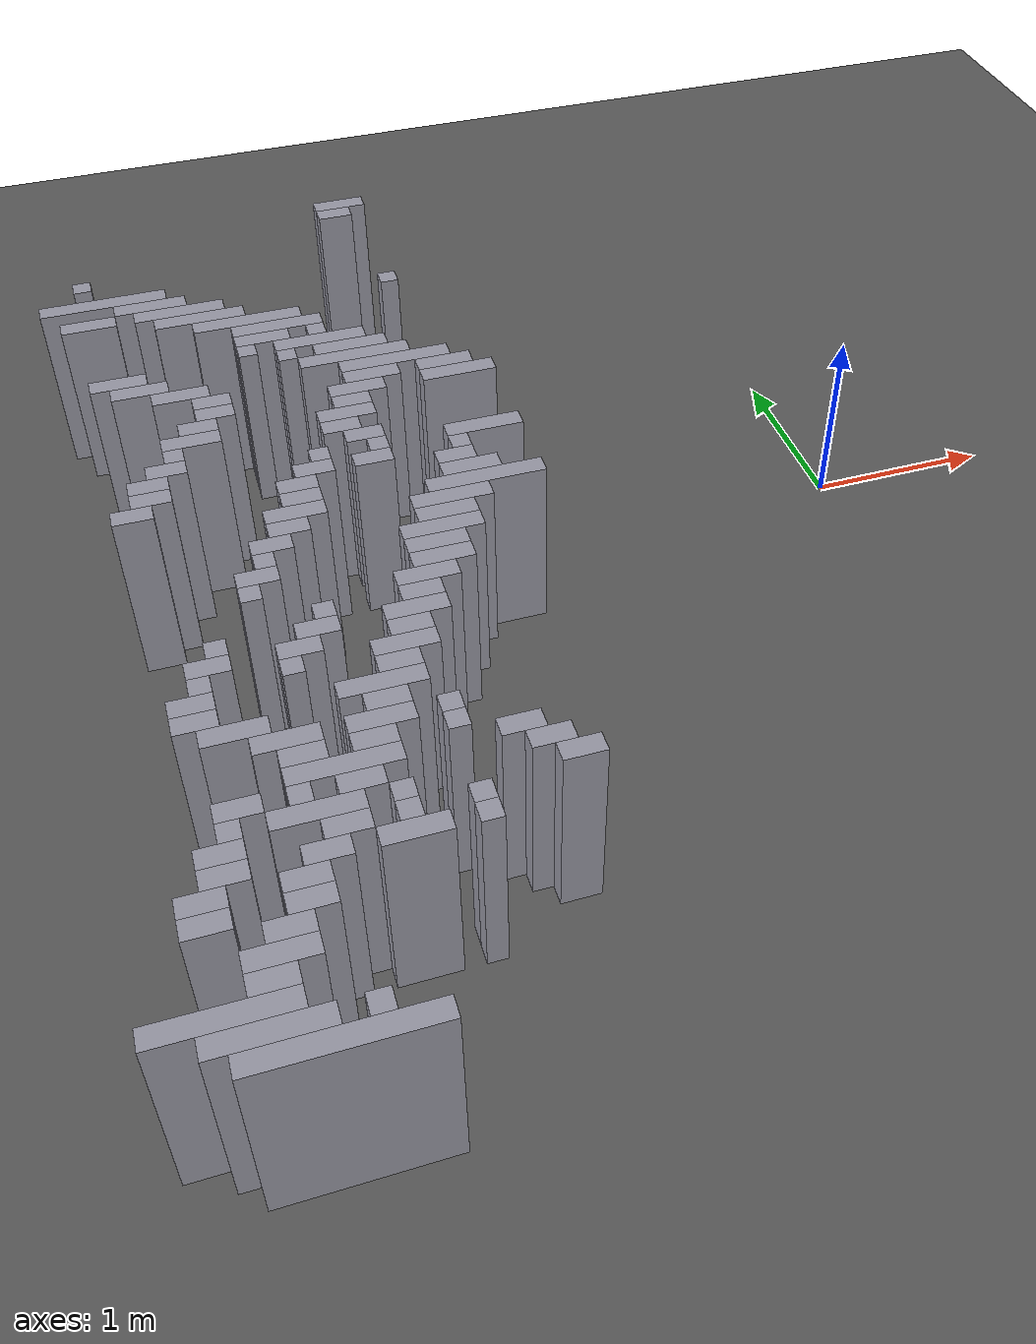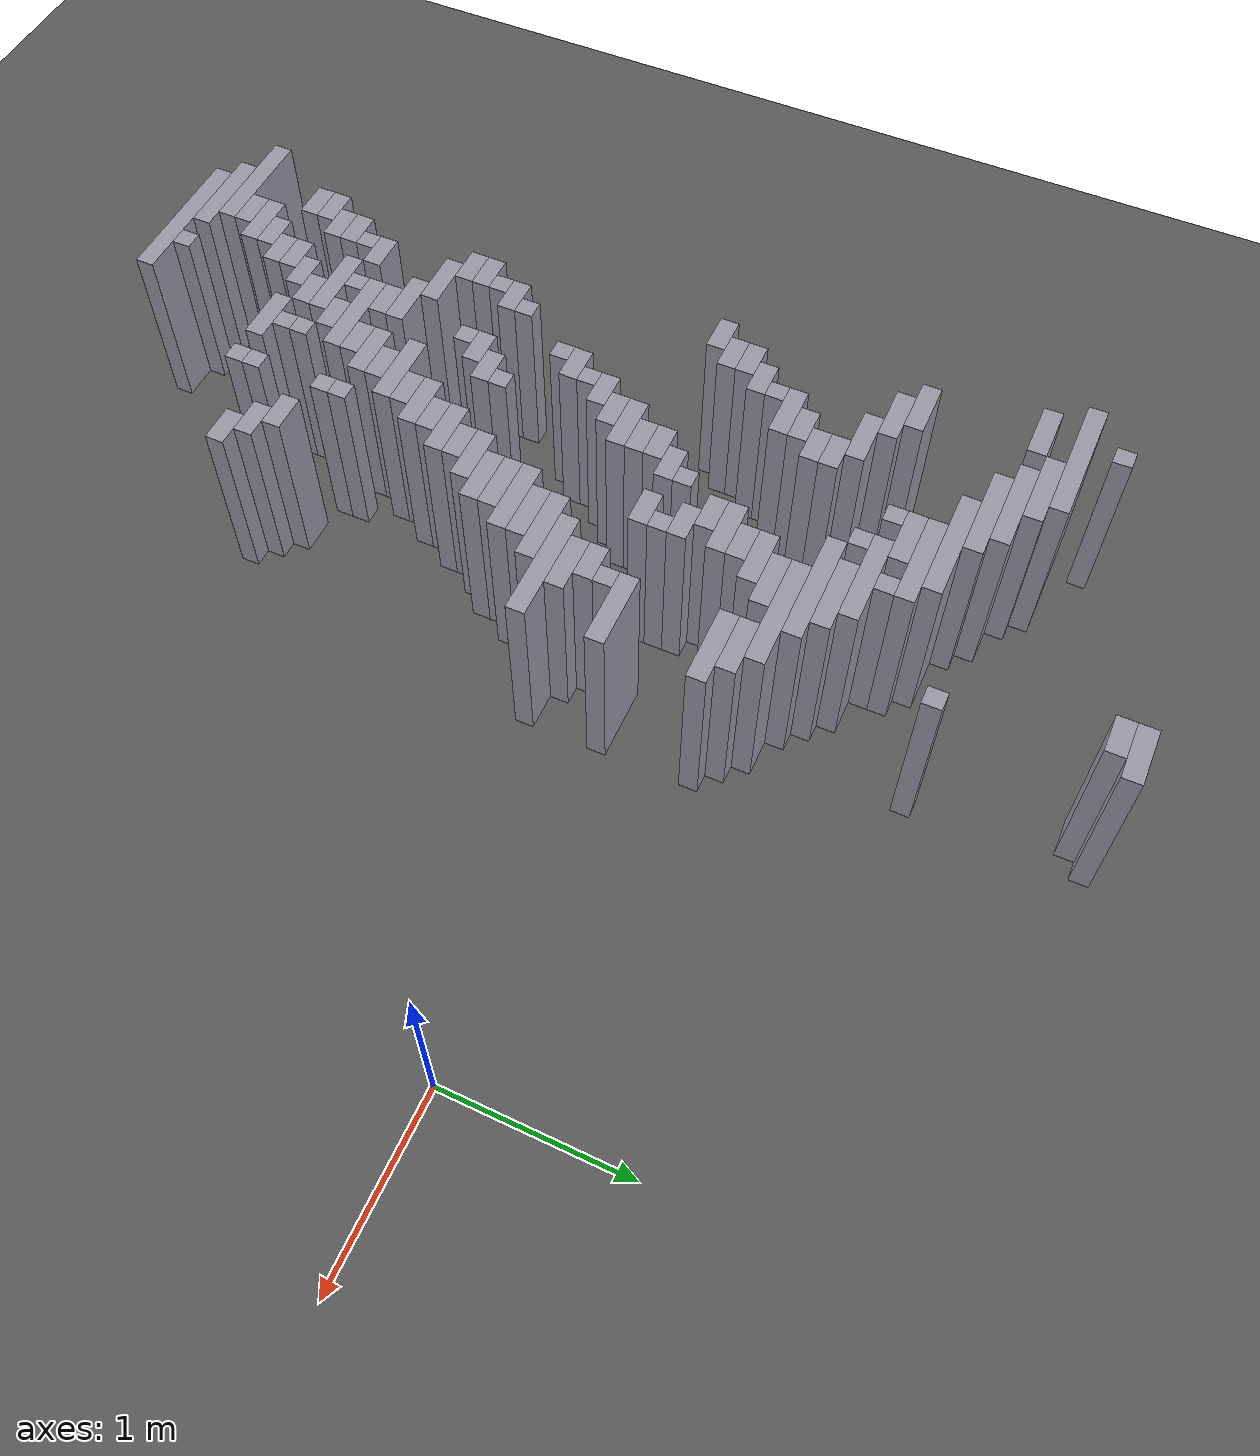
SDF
<sdf version="1.8">
 <world name="dimi">
  <model name="ground">
   <static>true</static>
   <link name="ground_link">
    <collision name="c"><geometry><plane><normal>0 0 1</normal><size>60 60</size></plane></geometry></collision>
    <visual name="v">
     <geometry><plane><normal>0 0 1</normal><size>60 60</size></plane></geometry>
     <material><ambient>0.3 0.3 0.3 1</ambient><diffuse>0.35 0.35 0.35 1</diffuse></material>
    </visual>
   </link>
  </model>
  <model name="walls">
   <static>true</static>
   <link name="wall_0">
    <pose>-2.3110 2.3290 0.5000 0 0 0</pose>
    <collision name="c"><geometry><box><size>0.3000 0.1000 1.0000</size></box></geometry></collision>
    <visual name="v">
     <geometry><box><size>0.3000 0.1000 1.0000</size></box></geometry>
     <material><ambient>0.5 0.5 0.55 1</ambient><diffuse>0.6 0.6 0.65 1</diffuse></material>
    </visual>
   </link>
   <link name="wall_2">
    <pose>-2.3610 2.2290 0.5000 0 0 0</pose>
    <collision name="c"><geometry><box><size>0.2000 0.1000 1.0000</size></box></geometry></collision>
    <visual name="v">
     <geometry><box><size>0.2000 0.1000 1.0000</size></box></geometry>
     <material><ambient>0.5 0.5 0.55 1</ambient><diffuse>0.6 0.6 0.65 1</diffuse></material>
    </visual>
   </link>
   <link name="wall_9">
    <pose>-3.9110 1.8290 0.5000 0 0 0</pose>
    <collision name="c"><geometry><box><size>0.1000 0.1000 1.0000</size></box></geometry></collision>
    <visual name="v">
     <geometry><box><size>0.1000 0.1000 1.0000</size></box></geometry>
     <material><ambient>0.5 0.5 0.55 1</ambient><diffuse>0.6 0.6 0.65 1</diffuse></material>
    </visual>
   </link>
   <link name="wall_16">
    <pose>-3.8110 1.6290 0.5000 0 0 0</pose>
    <collision name="c"><geometry><box><size>0.7000 0.1000 1.0000</size></box></geometry></collision>
    <visual name="v">
     <geometry><box><size>0.7000 0.1000 1.0000</size></box></geometry>
     <material><ambient>0.5 0.5 0.55 1</ambient><diffuse>0.6 0.6 0.65 1</diffuse></material>
    </visual>
   </link>
   <link name="wall_20">
    <pose>-3.5610 1.5290 0.5000 0 0 0</pose>
    <collision name="c"><geometry><box><size>0.4000 0.1000 1.0000</size></box></geometry></collision>
    <visual name="v">
     <geometry><box><size>0.4000 0.1000 1.0000</size></box></geometry>
     <material><ambient>0.5 0.5 0.55 1</ambient><diffuse>0.6 0.6 0.65 1</diffuse></material>
    </visual>
   </link>
   <link name="wall_24">
    <pose>-3.9110 1.4290 0.5000 0 0 0</pose>
    <collision name="c"><geometry><box><size>0.3000 0.1000 1.0000</size></box></geometry></collision>
    <visual name="v">
     <geometry><box><size>0.3000 0.1000 1.0000</size></box></geometry>
     <material><ambient>0.5 0.5 0.55 1</ambient><diffuse>0.6 0.6 0.65 1</diffuse></material>
    </visual>
   </link>
   <link name="wall_25">
    <pose>-3.4110 1.4290 0.5000 0 0 0</pose>
    <collision name="c"><geometry><box><size>0.5000 0.1000 1.0000</size></box></geometry></collision>
    <visual name="v">
     <geometry><box><size>0.5000 0.1000 1.0000</size></box></geometry>
     <material><ambient>0.5 0.5 0.55 1</ambient><diffuse>0.6 0.6 0.65 1</diffuse></material>
    </visual>
   </link>
   <link name="wall_26">
    <pose>-2.2110 1.4290 0.5000 0 0 0</pose>
    <collision name="c"><geometry><box><size>0.1000 0.1000 1.0000</size></box></geometry></collision>
    <visual name="v">
     <geometry><box><size>0.1000 0.1000 1.0000</size></box></geometry>
     <material><ambient>0.5 0.5 0.55 1</ambient><diffuse>0.6 0.6 0.65 1</diffuse></material>
    </visual>
   </link>
   <link name="wall_31">
    <pose>-3.3110 1.3290 0.5000 0 0 0</pose>
    <collision name="c"><geometry><box><size>0.5000 0.1000 1.0000</size></box></geometry></collision>
    <visual name="v">
     <geometry><box><size>0.5000 0.1000 1.0000</size></box></geometry>
     <material><ambient>0.5 0.5 0.55 1</ambient><diffuse>0.6 0.6 0.65 1</diffuse></material>
    </visual>
   </link>
   <link name="wall_36">
    <pose>-3.0610 1.2290 0.5000 0 0 0</pose>
    <collision name="c"><geometry><box><size>0.6000 0.1000 1.0000</size></box></geometry></collision>
    <visual name="v">
     <geometry><box><size>0.6000 0.1000 1.0000</size></box></geometry>
     <material><ambient>0.5 0.5 0.55 1</ambient><diffuse>0.6 0.6 0.65 1</diffuse></material>
    </visual>
   </link>
   <link name="wall_41">
    <pose>-2.9110 1.1290 0.5000 0 0 0</pose>
    <collision name="c"><geometry><box><size>0.5000 0.1000 1.0000</size></box></geometry></collision>
    <visual name="v">
     <geometry><box><size>0.5000 0.1000 1.0000</size></box></geometry>
     <material><ambient>0.5 0.5 0.55 1</ambient><diffuse>0.6 0.6 0.65 1</diffuse></material>
    </visual>
   </link>
   <link name="wall_45">
    <pose>-3.0110 1.0290 0.5000 0 0 0</pose>
    <collision name="c"><geometry><box><size>0.3000 0.1000 1.0000</size></box></geometry></collision>
    <visual name="v">
     <geometry><box><size>0.3000 0.1000 1.0000</size></box></geometry>
     <material><ambient>0.5 0.5 0.55 1</ambient><diffuse>0.6 0.6 0.65 1</diffuse></material>
    </visual>
   </link>
   <link name="wall_46">
    <pose>-2.7110 1.0290 0.5000 0 0 0</pose>
    <collision name="c"><geometry><box><size>0.1000 0.1000 1.0000</size></box></geometry></collision>
    <visual name="v">
     <geometry><box><size>0.1000 0.1000 1.0000</size></box></geometry>
     <material><ambient>0.5 0.5 0.55 1</ambient><diffuse>0.6 0.6 0.65 1</diffuse></material>
    </visual>
   </link>
   <link name="wall_50">
    <pose>-3.1110 0.9290 0.5000 0 0 0</pose>
    <collision name="c"><geometry><box><size>0.1000 0.1000 1.0000</size></box></geometry></collision>
    <visual name="v">
     <geometry><box><size>0.1000 0.1000 1.0000</size></box></geometry>
     <material><ambient>0.5 0.5 0.55 1</ambient><diffuse>0.6 0.6 0.65 1</diffuse></material>
    </visual>
   </link>
   <link name="wall_51">
    <pose>-2.7110 0.9290 0.5000 0 0 0</pose>
    <collision name="c"><geometry><box><size>0.5000 0.1000 1.0000</size></box></geometry></collision>
    <visual name="v">
     <geometry><box><size>0.5000 0.1000 1.0000</size></box></geometry>
     <material><ambient>0.5 0.5 0.55 1</ambient><diffuse>0.6 0.6 0.65 1</diffuse></material>
    </visual>
   </link>
   <link name="wall_54">
    <pose>-3.8110 0.8290 0.5000 0 0 0</pose>
    <collision name="c"><geometry><box><size>0.3000 0.1000 1.0000</size></box></geometry></collision>
    <visual name="v">
     <geometry><box><size>0.3000 0.1000 1.0000</size></box></geometry>
     <material><ambient>0.5 0.5 0.55 1</ambient><diffuse>0.6 0.6 0.65 1</diffuse></material>
    </visual>
   </link>
   <link name="wall_55">
    <pose>-2.9110 0.8290 0.5000 0 0 0</pose>
    <collision name="c"><geometry><box><size>0.1000 0.1000 1.0000</size></box></geometry></collision>
    <visual name="v">
     <geometry><box><size>0.1000 0.1000 1.0000</size></box></geometry>
     <material><ambient>0.5 0.5 0.55 1</ambient><diffuse>0.6 0.6 0.65 1</diffuse></material>
    </visual>
   </link>
   <link name="wall_56">
    <pose>-2.5610 0.8290 0.5000 0 0 0</pose>
    <collision name="c"><geometry><box><size>0.4000 0.1000 1.0000</size></box></geometry></collision>
    <visual name="v">
     <geometry><box><size>0.4000 0.1000 1.0000</size></box></geometry>
     <material><ambient>0.5 0.5 0.55 1</ambient><diffuse>0.6 0.6 0.65 1</diffuse></material>
    </visual>
   </link>
   <link name="wall_60">
    <pose>-3.7110 0.7290 0.5000 0 0 0</pose>
    <collision name="c"><geometry><box><size>0.3000 0.1000 1.0000</size></box></geometry></collision>
    <visual name="v">
     <geometry><box><size>0.3000 0.1000 1.0000</size></box></geometry>
     <material><ambient>0.5 0.5 0.55 1</ambient><diffuse>0.6 0.6 0.65 1</diffuse></material>
    </visual>
   </link>
   <link name="wall_61">
    <pose>-2.5610 0.7290 0.5000 0 0 0</pose>
    <collision name="c"><geometry><box><size>0.6000 0.1000 1.0000</size></box></geometry></collision>
    <visual name="v">
     <geometry><box><size>0.6000 0.1000 1.0000</size></box></geometry>
     <material><ambient>0.5 0.5 0.55 1</ambient><diffuse>0.6 0.6 0.65 1</diffuse></material>
    </visual>
   </link>
   <link name="wall_64">
    <pose>-3.5110 0.6290 0.5000 0 0 0</pose>
    <collision name="c"><geometry><box><size>0.3000 0.1000 1.0000</size></box></geometry></collision>
    <visual name="v">
     <geometry><box><size>0.3000 0.1000 1.0000</size></box></geometry>
     <material><ambient>0.5 0.5 0.55 1</ambient><diffuse>0.6 0.6 0.65 1</diffuse></material>
    </visual>
   </link>
   <link name="wall_65">
    <pose>-2.3610 0.6290 0.5000 0 0 0</pose>
    <collision name="c"><geometry><box><size>0.6000 0.1000 1.0000</size></box></geometry></collision>
    <visual name="v">
     <geometry><box><size>0.6000 0.1000 1.0000</size></box></geometry>
     <material><ambient>0.5 0.5 0.55 1</ambient><diffuse>0.6 0.6 0.65 1</diffuse></material>
    </visual>
   </link>
   <link name="wall_68">
    <pose>-3.3610 0.5290 0.5000 0 0 0</pose>
    <collision name="c"><geometry><box><size>0.2000 0.1000 1.0000</size></box></geometry></collision>
    <visual name="v">
     <geometry><box><size>0.2000 0.1000 1.0000</size></box></geometry>
     <material><ambient>0.5 0.5 0.55 1</ambient><diffuse>0.6 0.6 0.65 1</diffuse></material>
    </visual>
   </link>
   <link name="wall_69">
    <pose>-2.5110 0.5290 0.5000 0 0 0</pose>
    <collision name="c"><geometry><box><size>0.3000 0.1000 1.0000</size></box></geometry></collision>
    <visual name="v">
     <geometry><box><size>0.3000 0.1000 1.0000</size></box></geometry>
     <material><ambient>0.5 0.5 0.55 1</ambient><diffuse>0.6 0.6 0.65 1</diffuse></material>
    </visual>
   </link>
   <link name="wall_70">
    <pose>-2.1110 0.5290 0.5000 0 0 0</pose>
    <collision name="c"><geometry><box><size>0.3000 0.1000 1.0000</size></box></geometry></collision>
    <visual name="v">
     <geometry><box><size>0.3000 0.1000 1.0000</size></box></geometry>
     <material><ambient>0.5 0.5 0.55 1</ambient><diffuse>0.6 0.6 0.65 1</diffuse></material>
    </visual>
   </link>
   <link name="wall_73">
    <pose>-3.3610 0.4290 0.5000 0 0 0</pose>
    <collision name="c"><geometry><box><size>0.2000 0.1000 1.0000</size></box></geometry></collision>
    <visual name="v">
     <geometry><box><size>0.2000 0.1000 1.0000</size></box></geometry>
     <material><ambient>0.5 0.5 0.55 1</ambient><diffuse>0.6 0.6 0.65 1</diffuse></material>
    </visual>
   </link>
   <link name="wall_74">
    <pose>-2.6110 0.4290 0.5000 0 0 0</pose>
    <collision name="c"><geometry><box><size>0.3000 0.1000 1.0000</size></box></geometry></collision>
    <visual name="v">
     <geometry><box><size>0.3000 0.1000 1.0000</size></box></geometry>
     <material><ambient>0.5 0.5 0.55 1</ambient><diffuse>0.6 0.6 0.65 1</diffuse></material>
    </visual>
   </link>
   <link name="wall_75">
    <pose>-2.0610 0.4290 0.5000 0 0 0</pose>
    <collision name="c"><geometry><box><size>0.4000 0.1000 1.0000</size></box></geometry></collision>
    <visual name="v">
     <geometry><box><size>0.4000 0.1000 1.0000</size></box></geometry>
     <material><ambient>0.5 0.5 0.55 1</ambient><diffuse>0.6 0.6 0.65 1</diffuse></material>
    </visual>
   </link>
   <link name="wall_79">
    <pose>-3.4610 0.3290 0.5000 0 0 0</pose>
    <collision name="c"><geometry><box><size>0.2000 0.1000 1.0000</size></box></geometry></collision>
    <visual name="v">
     <geometry><box><size>0.2000 0.1000 1.0000</size></box></geometry>
     <material><ambient>0.5 0.5 0.55 1</ambient><diffuse>0.6 0.6 0.65 1</diffuse></material>
    </visual>
   </link>
   <link name="wall_80">
    <pose>-2.6610 0.3290 0.5000 0 0 0</pose>
    <collision name="c"><geometry><box><size>0.2000 0.1000 1.0000</size></box></geometry></collision>
    <visual name="v">
     <geometry><box><size>0.2000 0.1000 1.0000</size></box></geometry>
     <material><ambient>0.5 0.5 0.55 1</ambient><diffuse>0.6 0.6 0.65 1</diffuse></material>
    </visual>
   </link>
   <link name="wall_83">
    <pose>-3.5110 0.2290 0.5000 0 0 0</pose>
    <collision name="c"><geometry><box><size>0.3000 0.1000 1.0000</size></box></geometry></collision>
    <visual name="v">
     <geometry><box><size>0.3000 0.1000 1.0000</size></box></geometry>
     <material><ambient>0.5 0.5 0.55 1</ambient><diffuse>0.6 0.6 0.65 1</diffuse></material>
    </visual>
   </link>
   <link name="wall_84">
    <pose>-2.7110 0.2290 0.5000 0 0 0</pose>
    <collision name="c"><geometry><box><size>0.3000 0.1000 1.0000</size></box></geometry></collision>
    <visual name="v">
     <geometry><box><size>0.3000 0.1000 1.0000</size></box></geometry>
     <material><ambient>0.5 0.5 0.55 1</ambient><diffuse>0.6 0.6 0.65 1</diffuse></material>
    </visual>
   </link>
   <link name="wall_88">
    <pose>-3.6110 0.1290 0.5000 0 0 0</pose>
    <collision name="c"><geometry><box><size>0.1000 0.1000 1.0000</size></box></geometry></collision>
    <visual name="v">
     <geometry><box><size>0.1000 0.1000 1.0000</size></box></geometry>
     <material><ambient>0.5 0.5 0.55 1</ambient><diffuse>0.6 0.6 0.65 1</diffuse></material>
    </visual>
   </link>
   <link name="wall_89">
    <pose>-2.7610 0.1290 0.5000 0 0 0</pose>
    <collision name="c"><geometry><box><size>0.2000 0.1000 1.0000</size></box></geometry></collision>
    <visual name="v">
     <geometry><box><size>0.2000 0.1000 1.0000</size></box></geometry>
     <material><ambient>0.5 0.5 0.55 1</ambient><diffuse>0.6 0.6 0.65 1</diffuse></material>
    </visual>
   </link>
   <link name="wall_95">
    <pose>-3.6610 0.0290 0.5000 0 0 0</pose>
    <collision name="c"><geometry><box><size>0.2000 0.1000 1.0000</size></box></geometry></collision>
    <visual name="v">
     <geometry><box><size>0.2000 0.1000 1.0000</size></box></geometry>
     <material><ambient>0.5 0.5 0.55 1</ambient><diffuse>0.6 0.6 0.65 1</diffuse></material>
    </visual>
   </link>
   <link name="wall_96">
    <pose>-2.6610 0.0290 0.5000 0 0 0</pose>
    <collision name="c"><geometry><box><size>0.2000 0.1000 1.0000</size></box></geometry></collision>
    <visual name="v">
     <geometry><box><size>0.2000 0.1000 1.0000</size></box></geometry>
     <material><ambient>0.5 0.5 0.55 1</ambient><diffuse>0.6 0.6 0.65 1</diffuse></material>
    </visual>
   </link>
   <link name="wall_101">
    <pose>-3.7610 -0.0710 0.5000 0 0 0</pose>
    <collision name="c"><geometry><box><size>0.2000 0.1000 1.0000</size></box></geometry></collision>
    <visual name="v">
     <geometry><box><size>0.2000 0.1000 1.0000</size></box></geometry>
     <material><ambient>0.5 0.5 0.55 1</ambient><diffuse>0.6 0.6 0.65 1</diffuse></material>
    </visual>
   </link>
   <link name="wall_102">
    <pose>-2.9110 -0.0710 0.5000 0 0 0</pose>
    <collision name="c"><geometry><box><size>0.1000 0.1000 1.0000</size></box></geometry></collision>
    <visual name="v">
     <geometry><box><size>0.1000 0.1000 1.0000</size></box></geometry>
     <material><ambient>0.5 0.5 0.55 1</ambient><diffuse>0.6 0.6 0.65 1</diffuse></material>
    </visual>
   </link>
   <link name="wall_103">
    <pose>-2.6110 -0.0710 0.5000 0 0 0</pose>
    <collision name="c"><geometry><box><size>0.1000 0.1000 1.0000</size></box></geometry></collision>
    <visual name="v">
     <geometry><box><size>0.1000 0.1000 1.0000</size></box></geometry>
     <material><ambient>0.5 0.5 0.55 1</ambient><diffuse>0.6 0.6 0.65 1</diffuse></material>
    </visual>
   </link>
   <link name="wall_104">
    <pose>-2.0610 -0.0710 0.5000 0 0 0</pose>
    <collision name="c"><geometry><box><size>0.4000 0.1000 1.0000</size></box></geometry></collision>
    <visual name="v">
     <geometry><box><size>0.4000 0.1000 1.0000</size></box></geometry>
     <material><ambient>0.5 0.5 0.55 1</ambient><diffuse>0.6 0.6 0.65 1</diffuse></material>
    </visual>
   </link>
   <link name="wall_110">
    <pose>-3.7610 -0.1710 0.5000 0 0 0</pose>
    <collision name="c"><geometry><box><size>0.2000 0.1000 1.0000</size></box></geometry></collision>
    <visual name="v">
     <geometry><box><size>0.2000 0.1000 1.0000</size></box></geometry>
     <material><ambient>0.5 0.5 0.55 1</ambient><diffuse>0.6 0.6 0.65 1</diffuse></material>
    </visual>
   </link>
   <link name="wall_111">
    <pose>-2.9610 -0.1710 0.5000 0 0 0</pose>
    <collision name="c"><geometry><box><size>0.2000 0.1000 1.0000</size></box></geometry></collision>
    <visual name="v">
     <geometry><box><size>0.2000 0.1000 1.0000</size></box></geometry>
     <material><ambient>0.5 0.5 0.55 1</ambient><diffuse>0.6 0.6 0.65 1</diffuse></material>
    </visual>
   </link>
   <link name="wall_112">
    <pose>-2.6610 -0.1710 0.5000 0 0 0</pose>
    <collision name="c"><geometry><box><size>0.2000 0.1000 1.0000</size></box></geometry></collision>
    <visual name="v">
     <geometry><box><size>0.2000 0.1000 1.0000</size></box></geometry>
     <material><ambient>0.5 0.5 0.55 1</ambient><diffuse>0.6 0.6 0.65 1</diffuse></material>
    </visual>
   </link>
   <link name="wall_113">
    <pose>-2.2110 -0.1710 0.5000 0 0 0</pose>
    <collision name="c"><geometry><box><size>0.1000 0.1000 1.0000</size></box></geometry></collision>
    <visual name="v">
     <geometry><box><size>0.1000 0.1000 1.0000</size></box></geometry>
     <material><ambient>0.5 0.5 0.55 1</ambient><diffuse>0.6 0.6 0.65 1</diffuse></material>
    </visual>
   </link>
   <link name="wall_121">
    <pose>-3.8610 -0.2710 0.5000 0 0 0</pose>
    <collision name="c"><geometry><box><size>0.2000 0.1000 1.0000</size></box></geometry></collision>
    <visual name="v">
     <geometry><box><size>0.2000 0.1000 1.0000</size></box></geometry>
     <material><ambient>0.5 0.5 0.55 1</ambient><diffuse>0.6 0.6 0.65 1</diffuse></material>
    </visual>
   </link>
   <link name="wall_122">
    <pose>-3.0610 -0.2710 0.5000 0 0 0</pose>
    <collision name="c"><geometry><box><size>0.2000 0.1000 1.0000</size></box></geometry></collision>
    <visual name="v">
     <geometry><box><size>0.2000 0.1000 1.0000</size></box></geometry>
     <material><ambient>0.5 0.5 0.55 1</ambient><diffuse>0.6 0.6 0.65 1</diffuse></material>
    </visual>
   </link>
   <link name="wall_123">
    <pose>-2.2610 -0.2710 0.5000 0 0 0</pose>
    <collision name="c"><geometry><box><size>0.2000 0.1000 1.0000</size></box></geometry></collision>
    <visual name="v">
     <geometry><box><size>0.2000 0.1000 1.0000</size></box></geometry>
     <material><ambient>0.5 0.5 0.55 1</ambient><diffuse>0.6 0.6 0.65 1</diffuse></material>
    </visual>
   </link>
   <link name="wall_132">
    <pose>-3.0610 -0.3710 0.5000 0 0 0</pose>
    <collision name="c"><geometry><box><size>0.2000 0.1000 1.0000</size></box></geometry></collision>
    <visual name="v">
     <geometry><box><size>0.2000 0.1000 1.0000</size></box></geometry>
     <material><ambient>0.5 0.5 0.55 1</ambient><diffuse>0.6 0.6 0.65 1</diffuse></material>
    </visual>
   </link>
   <link name="wall_133">
    <pose>-2.2110 -0.3710 0.5000 0 0 0</pose>
    <collision name="c"><geometry><box><size>0.3000 0.1000 1.0000</size></box></geometry></collision>
    <visual name="v">
     <geometry><box><size>0.3000 0.1000 1.0000</size></box></geometry>
     <material><ambient>0.5 0.5 0.55 1</ambient><diffuse>0.6 0.6 0.65 1</diffuse></material>
    </visual>
   </link>
   <link name="wall_144">
    <pose>-3.1110 -0.4710 0.5000 0 0 0</pose>
    <collision name="c"><geometry><box><size>0.3000 0.1000 1.0000</size></box></geometry></collision>
    <visual name="v">
     <geometry><box><size>0.3000 0.1000 1.0000</size></box></geometry>
     <material><ambient>0.5 0.5 0.55 1</ambient><diffuse>0.6 0.6 0.65 1</diffuse></material>
    </visual>
   </link>
   <link name="wall_145">
    <pose>-2.1610 -0.4710 0.5000 0 0 0</pose>
    <collision name="c"><geometry><box><size>0.6000 0.1000 1.0000</size></box></geometry></collision>
    <visual name="v">
     <geometry><box><size>0.6000 0.1000 1.0000</size></box></geometry>
     <material><ambient>0.5 0.5 0.55 1</ambient><diffuse>0.6 0.6 0.65 1</diffuse></material>
    </visual>
   </link>
   <link name="wall_154">
    <pose>-3.1610 -0.5710 0.5000 0 0 0</pose>
    <collision name="c"><geometry><box><size>0.2000 0.1000 1.0000</size></box></geometry></collision>
    <visual name="v">
     <geometry><box><size>0.2000 0.1000 1.0000</size></box></geometry>
     <material><ambient>0.5 0.5 0.55 1</ambient><diffuse>0.6 0.6 0.65 1</diffuse></material>
    </visual>
   </link>
   <link name="wall_155">
    <pose>-2.3610 -0.5710 0.5000 0 0 0</pose>
    <collision name="c"><geometry><box><size>0.4000 0.1000 1.0000</size></box></geometry></collision>
    <visual name="v">
     <geometry><box><size>0.4000 0.1000 1.0000</size></box></geometry>
     <material><ambient>0.5 0.5 0.55 1</ambient><diffuse>0.6 0.6 0.65 1</diffuse></material>
    </visual>
   </link>
   <link name="wall_165">
    <pose>-3.2610 -0.6710 0.5000 0 0 0</pose>
    <collision name="c"><geometry><box><size>0.2000 0.1000 1.0000</size></box></geometry></collision>
    <visual name="v">
     <geometry><box><size>0.2000 0.1000 1.0000</size></box></geometry>
     <material><ambient>0.5 0.5 0.55 1</ambient><diffuse>0.6 0.6 0.65 1</diffuse></material>
    </visual>
   </link>
   <link name="wall_166">
    <pose>-2.4110 -0.6710 0.5000 0 0 0</pose>
    <collision name="c"><geometry><box><size>0.3000 0.1000 1.0000</size></box></geometry></collision>
    <visual name="v">
     <geometry><box><size>0.3000 0.1000 1.0000</size></box></geometry>
     <material><ambient>0.5 0.5 0.55 1</ambient><diffuse>0.6 0.6 0.65 1</diffuse></material>
    </visual>
   </link>
   <link name="wall_172">
    <pose>-3.3110 -0.7710 0.5000 0 0 0</pose>
    <collision name="c"><geometry><box><size>0.1000 0.1000 1.0000</size></box></geometry></collision>
    <visual name="v">
     <geometry><box><size>0.1000 0.1000 1.0000</size></box></geometry>
     <material><ambient>0.5 0.5 0.55 1</ambient><diffuse>0.6 0.6 0.65 1</diffuse></material>
    </visual>
   </link>
   <link name="wall_173">
    <pose>-2.4610 -0.7710 0.5000 0 0 0</pose>
    <collision name="c"><geometry><box><size>0.4000 0.1000 1.0000</size></box></geometry></collision>
    <visual name="v">
     <geometry><box><size>0.4000 0.1000 1.0000</size></box></geometry>
     <material><ambient>0.5 0.5 0.55 1</ambient><diffuse>0.6 0.6 0.65 1</diffuse></material>
    </visual>
   </link>
   <link name="wall_178">
    <pose>-3.3610 -0.8710 0.5000 0 0 0</pose>
    <collision name="c"><geometry><box><size>0.2000 0.1000 1.0000</size></box></geometry></collision>
    <visual name="v">
     <geometry><box><size>0.2000 0.1000 1.0000</size></box></geometry>
     <material><ambient>0.5 0.5 0.55 1</ambient><diffuse>0.6 0.6 0.65 1</diffuse></material>
    </visual>
   </link>
   <link name="wall_179">
    <pose>-2.5110 -0.8710 0.5000 0 0 0</pose>
    <collision name="c"><geometry><box><size>0.3000 0.1000 1.0000</size></box></geometry></collision>
    <visual name="v">
     <geometry><box><size>0.3000 0.1000 1.0000</size></box></geometry>
     <material><ambient>0.5 0.5 0.55 1</ambient><diffuse>0.6 0.6 0.65 1</diffuse></material>
    </visual>
   </link>
   <link name="wall_184">
    <pose>-3.4110 -0.9710 0.5000 0 0 0</pose>
    <collision name="c"><geometry><box><size>0.1000 0.1000 1.0000</size></box></geometry></collision>
    <visual name="v">
     <geometry><box><size>0.1000 0.1000 1.0000</size></box></geometry>
     <material><ambient>0.5 0.5 0.55 1</ambient><diffuse>0.6 0.6 0.65 1</diffuse></material>
    </visual>
   </link>
   <link name="wall_185">
    <pose>-2.5110 -0.9710 0.5000 0 0 0</pose>
    <collision name="c"><geometry><box><size>0.3000 0.1000 1.0000</size></box></geometry></collision>
    <visual name="v">
     <geometry><box><size>0.3000 0.1000 1.0000</size></box></geometry>
     <material><ambient>0.5 0.5 0.55 1</ambient><diffuse>0.6 0.6 0.65 1</diffuse></material>
    </visual>
   </link>
   <link name="wall_190">
    <pose>-2.6110 -1.0710 0.5000 0 0 0</pose>
    <collision name="c"><geometry><box><size>0.3000 0.1000 1.0000</size></box></geometry></collision>
    <visual name="v">
     <geometry><box><size>0.3000 0.1000 1.0000</size></box></geometry>
     <material><ambient>0.5 0.5 0.55 1</ambient><diffuse>0.6 0.6 0.65 1</diffuse></material>
    </visual>
   </link>
   <link name="wall_196">
    <pose>-3.1110 -1.1710 0.5000 0 0 0</pose>
    <collision name="c"><geometry><box><size>0.1000 0.1000 1.0000</size></box></geometry></collision>
    <visual name="v">
     <geometry><box><size>0.1000 0.1000 1.0000</size></box></geometry>
     <material><ambient>0.5 0.5 0.55 1</ambient><diffuse>0.6 0.6 0.65 1</diffuse></material>
    </visual>
   </link>
   <link name="wall_197">
    <pose>-2.6610 -1.1710 0.5000 0 0 0</pose>
    <collision name="c"><geometry><box><size>0.2000 0.1000 1.0000</size></box></geometry></collision>
    <visual name="v">
     <geometry><box><size>0.2000 0.1000 1.0000</size></box></geometry>
     <material><ambient>0.5 0.5 0.55 1</ambient><diffuse>0.6 0.6 0.65 1</diffuse></material>
    </visual>
   </link>
   <link name="wall_203">
    <pose>-3.6110 -1.2710 0.5000 0 0 0</pose>
    <collision name="c"><geometry><box><size>0.1000 0.1000 1.0000</size></box></geometry></collision>
    <visual name="v">
     <geometry><box><size>0.1000 0.1000 1.0000</size></box></geometry>
     <material><ambient>0.5 0.5 0.55 1</ambient><diffuse>0.6 0.6 0.65 1</diffuse></material>
    </visual>
   </link>
   <link name="wall_204">
    <pose>-3.1610 -1.2710 0.5000 0 0 0</pose>
    <collision name="c"><geometry><box><size>0.2000 0.1000 1.0000</size></box></geometry></collision>
    <visual name="v">
     <geometry><box><size>0.2000 0.1000 1.0000</size></box></geometry>
     <material><ambient>0.5 0.5 0.55 1</ambient><diffuse>0.6 0.6 0.65 1</diffuse></material>
    </visual>
   </link>
   <link name="wall_205">
    <pose>-2.7110 -1.2710 0.5000 0 0 0</pose>
    <collision name="c"><geometry><box><size>0.3000 0.1000 1.0000</size></box></geometry></collision>
    <visual name="v">
     <geometry><box><size>0.3000 0.1000 1.0000</size></box></geometry>
     <material><ambient>0.5 0.5 0.55 1</ambient><diffuse>0.6 0.6 0.65 1</diffuse></material>
    </visual>
   </link>
   <link name="wall_212">
    <pose>-3.6610 -1.3710 0.5000 0 0 0</pose>
    <collision name="c"><geometry><box><size>0.2000 0.1000 1.0000</size></box></geometry></collision>
    <visual name="v">
     <geometry><box><size>0.2000 0.1000 1.0000</size></box></geometry>
     <material><ambient>0.5 0.5 0.55 1</ambient><diffuse>0.6 0.6 0.65 1</diffuse></material>
    </visual>
   </link>
   <link name="wall_213">
    <pose>-3.2610 -1.3710 0.5000 0 0 0</pose>
    <collision name="c"><geometry><box><size>0.2000 0.1000 1.0000</size></box></geometry></collision>
    <visual name="v">
     <geometry><box><size>0.2000 0.1000 1.0000</size></box></geometry>
     <material><ambient>0.5 0.5 0.55 1</ambient><diffuse>0.6 0.6 0.65 1</diffuse></material>
    </visual>
   </link>
   <link name="wall_214">
    <pose>-2.7610 -1.3710 0.5000 0 0 0</pose>
    <collision name="c"><geometry><box><size>0.2000 0.1000 1.0000</size></box></geometry></collision>
    <visual name="v">
     <geometry><box><size>0.2000 0.1000 1.0000</size></box></geometry>
     <material><ambient>0.5 0.5 0.55 1</ambient><diffuse>0.6 0.6 0.65 1</diffuse></material>
    </visual>
   </link>
   <link name="wall_221">
    <pose>-3.7110 -1.4710 0.5000 0 0 0</pose>
    <collision name="c"><geometry><box><size>0.1000 0.1000 1.0000</size></box></geometry></collision>
    <visual name="v">
     <geometry><box><size>0.1000 0.1000 1.0000</size></box></geometry>
     <material><ambient>0.5 0.5 0.55 1</ambient><diffuse>0.6 0.6 0.65 1</diffuse></material>
    </visual>
   </link>
   <link name="wall_222">
    <pose>-3.3110 -1.4710 0.5000 0 0 0</pose>
    <collision name="c"><geometry><box><size>0.1000 0.1000 1.0000</size></box></geometry></collision>
    <visual name="v">
     <geometry><box><size>0.1000 0.1000 1.0000</size></box></geometry>
     <material><ambient>0.5 0.5 0.55 1</ambient><diffuse>0.6 0.6 0.65 1</diffuse></material>
    </visual>
   </link>
   <link name="wall_223">
    <pose>-2.8110 -1.4710 0.5000 0 0 0</pose>
    <collision name="c"><geometry><box><size>0.3000 0.1000 1.0000</size></box></geometry></collision>
    <visual name="v">
     <geometry><box><size>0.3000 0.1000 1.0000</size></box></geometry>
     <material><ambient>0.5 0.5 0.55 1</ambient><diffuse>0.6 0.6 0.65 1</diffuse></material>
    </visual>
   </link>
   <link name="wall_231">
    <pose>-3.7610 -1.5710 0.5000 0 0 0</pose>
    <collision name="c"><geometry><box><size>0.2000 0.1000 1.0000</size></box></geometry></collision>
    <visual name="v">
     <geometry><box><size>0.2000 0.1000 1.0000</size></box></geometry>
     <material><ambient>0.5 0.5 0.55 1</ambient><diffuse>0.6 0.6 0.65 1</diffuse></material>
    </visual>
   </link>
   <link name="wall_232">
    <pose>-2.8610 -1.5710 0.5000 0 0 0</pose>
    <collision name="c"><geometry><box><size>0.2000 0.1000 1.0000</size></box></geometry></collision>
    <visual name="v">
     <geometry><box><size>0.2000 0.1000 1.0000</size></box></geometry>
     <material><ambient>0.5 0.5 0.55 1</ambient><diffuse>0.6 0.6 0.65 1</diffuse></material>
    </visual>
   </link>
   <link name="wall_238">
    <pose>-3.7610 -1.6710 0.5000 0 0 0</pose>
    <collision name="c"><geometry><box><size>0.2000 0.1000 1.0000</size></box></geometry></collision>
    <visual name="v">
     <geometry><box><size>0.2000 0.1000 1.0000</size></box></geometry>
     <material><ambient>0.5 0.5 0.55 1</ambient><diffuse>0.6 0.6 0.65 1</diffuse></material>
    </visual>
   </link>
   <link name="wall_239">
    <pose>-2.9610 -1.6710 0.5000 0 0 0</pose>
    <collision name="c"><geometry><box><size>0.4000 0.1000 1.0000</size></box></geometry></collision>
    <visual name="v">
     <geometry><box><size>0.4000 0.1000 1.0000</size></box></geometry>
     <material><ambient>0.5 0.5 0.55 1</ambient><diffuse>0.6 0.6 0.65 1</diffuse></material>
    </visual>
   </link>
   <link name="wall_246">
    <pose>-3.6110 -1.7710 0.5000 0 0 0</pose>
    <collision name="c"><geometry><box><size>0.3000 0.1000 1.0000</size></box></geometry></collision>
    <visual name="v">
     <geometry><box><size>0.3000 0.1000 1.0000</size></box></geometry>
     <material><ambient>0.5 0.5 0.55 1</ambient><diffuse>0.6 0.6 0.65 1</diffuse></material>
    </visual>
   </link>
   <link name="wall_247">
    <pose>-2.9610 -1.7710 0.5000 0 0 0</pose>
    <collision name="c"><geometry><box><size>0.2000 0.1000 1.0000</size></box></geometry></collision>
    <visual name="v">
     <geometry><box><size>0.2000 0.1000 1.0000</size></box></geometry>
     <material><ambient>0.5 0.5 0.55 1</ambient><diffuse>0.6 0.6 0.65 1</diffuse></material>
    </visual>
   </link>
   <link name="wall_252">
    <pose>-3.4110 -1.8710 0.5000 0 0 0</pose>
    <collision name="c"><geometry><box><size>0.3000 0.1000 1.0000</size></box></geometry></collision>
    <visual name="v">
     <geometry><box><size>0.3000 0.1000 1.0000</size></box></geometry>
     <material><ambient>0.5 0.5 0.55 1</ambient><diffuse>0.6 0.6 0.65 1</diffuse></material>
    </visual>
   </link>
   <link name="wall_253">
    <pose>-3.0110 -1.8710 0.5000 0 0 0</pose>
    <collision name="c"><geometry><box><size>0.3000 0.1000 1.0000</size></box></geometry></collision>
    <visual name="v">
     <geometry><box><size>0.3000 0.1000 1.0000</size></box></geometry>
     <material><ambient>0.5 0.5 0.55 1</ambient><diffuse>0.6 0.6 0.65 1</diffuse></material>
    </visual>
   </link>
   <link name="wall_254">
    <pose>-2.7110 -1.8710 0.5000 0 0 0</pose>
    <collision name="c"><geometry><box><size>0.1000 0.1000 1.0000</size></box></geometry></collision>
    <visual name="v">
     <geometry><box><size>0.1000 0.1000 1.0000</size></box></geometry>
     <material><ambient>0.5 0.5 0.55 1</ambient><diffuse>0.6 0.6 0.65 1</diffuse></material>
    </visual>
   </link>
   <link name="wall_259">
    <pose>-3.3610 -1.9710 0.5000 0 0 0</pose>
    <collision name="c"><geometry><box><size>0.2000 0.1000 1.0000</size></box></geometry></collision>
    <visual name="v">
     <geometry><box><size>0.2000 0.1000 1.0000</size></box></geometry>
     <material><ambient>0.5 0.5 0.55 1</ambient><diffuse>0.6 0.6 0.65 1</diffuse></material>
    </visual>
   </link>
   <link name="wall_260">
    <pose>-3.0610 -1.9710 0.5000 0 0 0</pose>
    <collision name="c"><geometry><box><size>0.2000 0.1000 1.0000</size></box></geometry></collision>
    <visual name="v">
     <geometry><box><size>0.2000 0.1000 1.0000</size></box></geometry>
     <material><ambient>0.5 0.5 0.55 1</ambient><diffuse>0.6 0.6 0.65 1</diffuse></material>
    </visual>
   </link>
   <link name="wall_261">
    <pose>-2.7110 -1.9710 0.5000 0 0 0</pose>
    <collision name="c"><geometry><box><size>0.1000 0.1000 1.0000</size></box></geometry></collision>
    <visual name="v">
     <geometry><box><size>0.1000 0.1000 1.0000</size></box></geometry>
     <material><ambient>0.5 0.5 0.55 1</ambient><diffuse>0.6 0.6 0.65 1</diffuse></material>
    </visual>
   </link>
   <link name="wall_267">
    <pose>-3.2110 -2.0710 0.5000 0 0 0</pose>
    <collision name="c"><geometry><box><size>0.5000 0.1000 1.0000</size></box></geometry></collision>
    <visual name="v">
     <geometry><box><size>0.5000 0.1000 1.0000</size></box></geometry>
     <material><ambient>0.5 0.5 0.55 1</ambient><diffuse>0.6 0.6 0.65 1</diffuse></material>
    </visual>
   </link>
   <link name="wall_268">
    <pose>-2.4610 -2.0710 0.5000 0 0 0</pose>
    <collision name="c"><geometry><box><size>0.2000 0.1000 1.0000</size></box></geometry></collision>
    <visual name="v">
     <geometry><box><size>0.2000 0.1000 1.0000</size></box></geometry>
     <material><ambient>0.5 0.5 0.55 1</ambient><diffuse>0.6 0.6 0.65 1</diffuse></material>
    </visual>
   </link>
   <link name="wall_274">
    <pose>-3.6610 -2.1710 0.5000 0 0 0</pose>
    <collision name="c"><geometry><box><size>0.2000 0.1000 1.0000</size></box></geometry></collision>
    <visual name="v">
     <geometry><box><size>0.2000 0.1000 1.0000</size></box></geometry>
     <material><ambient>0.5 0.5 0.55 1</ambient><diffuse>0.6 0.6 0.65 1</diffuse></material>
    </visual>
   </link>
   <link name="wall_275">
    <pose>-3.4110 -2.1710 0.5000 0 0 0</pose>
    <collision name="c"><geometry><box><size>0.1000 0.1000 1.0000</size></box></geometry></collision>
    <visual name="v">
     <geometry><box><size>0.1000 0.1000 1.0000</size></box></geometry>
     <material><ambient>0.5 0.5 0.55 1</ambient><diffuse>0.6 0.6 0.65 1</diffuse></material>
    </visual>
   </link>
   <link name="wall_276">
    <pose>-3.1610 -2.1710 0.5000 0 0 0</pose>
    <collision name="c"><geometry><box><size>0.2000 0.1000 1.0000</size></box></geometry></collision>
    <visual name="v">
     <geometry><box><size>0.2000 0.1000 1.0000</size></box></geometry>
     <material><ambient>0.5 0.5 0.55 1</ambient><diffuse>0.6 0.6 0.65 1</diffuse></material>
    </visual>
   </link>
   <link name="wall_277">
    <pose>-2.3610 -2.1710 0.5000 0 0 0</pose>
    <collision name="c"><geometry><box><size>0.2000 0.1000 1.0000</size></box></geometry></collision>
    <visual name="v">
     <geometry><box><size>0.2000 0.1000 1.0000</size></box></geometry>
     <material><ambient>0.5 0.5 0.55 1</ambient><diffuse>0.6 0.6 0.65 1</diffuse></material>
    </visual>
   </link>
   <link name="wall_283">
    <pose>-3.7110 -2.2710 0.5000 0 0 0</pose>
    <collision name="c"><geometry><box><size>0.1000 0.1000 1.0000</size></box></geometry></collision>
    <visual name="v">
     <geometry><box><size>0.1000 0.1000 1.0000</size></box></geometry>
     <material><ambient>0.5 0.5 0.55 1</ambient><diffuse>0.6 0.6 0.65 1</diffuse></material>
    </visual>
   </link>
   <link name="wall_284">
    <pose>-3.3610 -2.2710 0.5000 0 0 0</pose>
    <collision name="c"><geometry><box><size>0.4000 0.1000 1.0000</size></box></geometry></collision>
    <visual name="v">
     <geometry><box><size>0.4000 0.1000 1.0000</size></box></geometry>
     <material><ambient>0.5 0.5 0.55 1</ambient><diffuse>0.6 0.6 0.65 1</diffuse></material>
    </visual>
   </link>
   <link name="wall_285">
    <pose>-3.0110 -2.2710 0.5000 0 0 0</pose>
    <collision name="c"><geometry><box><size>0.1000 0.1000 1.0000</size></box></geometry></collision>
    <visual name="v">
     <geometry><box><size>0.1000 0.1000 1.0000</size></box></geometry>
     <material><ambient>0.5 0.5 0.55 1</ambient><diffuse>0.6 0.6 0.65 1</diffuse></material>
    </visual>
   </link>
   <link name="wall_286">
    <pose>-2.2610 -2.2710 0.5000 0 0 0</pose>
    <collision name="c"><geometry><box><size>0.2000 0.1000 1.0000</size></box></geometry></collision>
    <visual name="v">
     <geometry><box><size>0.2000 0.1000 1.0000</size></box></geometry>
     <material><ambient>0.5 0.5 0.55 1</ambient><diffuse>0.6 0.6 0.65 1</diffuse></material>
    </visual>
   </link>
   <link name="wall_292">
    <pose>-3.7610 -2.3710 0.5000 0 0 0</pose>
    <collision name="c"><geometry><box><size>0.2000 0.1000 1.0000</size></box></geometry></collision>
    <visual name="v">
     <geometry><box><size>0.2000 0.1000 1.0000</size></box></geometry>
     <material><ambient>0.5 0.5 0.55 1</ambient><diffuse>0.6 0.6 0.65 1</diffuse></material>
    </visual>
   </link>
   <link name="wall_293">
    <pose>-3.2610 -2.3710 0.5000 0 0 0</pose>
    <collision name="c"><geometry><box><size>0.2000 0.1000 1.0000</size></box></geometry></collision>
    <visual name="v">
     <geometry><box><size>0.2000 0.1000 1.0000</size></box></geometry>
     <material><ambient>0.5 0.5 0.55 1</ambient><diffuse>0.6 0.6 0.65 1</diffuse></material>
    </visual>
   </link>
   <link name="wall_294">
    <pose>-3.0110 -2.3710 0.5000 0 0 0</pose>
    <collision name="c"><geometry><box><size>0.1000 0.1000 1.0000</size></box></geometry></collision>
    <visual name="v">
     <geometry><box><size>0.1000 0.1000 1.0000</size></box></geometry>
     <material><ambient>0.5 0.5 0.55 1</ambient><diffuse>0.6 0.6 0.65 1</diffuse></material>
    </visual>
   </link>
   <link name="wall_295">
    <pose>-2.7110 -2.3710 0.5000 0 0 0</pose>
    <collision name="c"><geometry><box><size>0.1000 0.1000 1.0000</size></box></geometry></collision>
    <visual name="v">
     <geometry><box><size>0.1000 0.1000 1.0000</size></box></geometry>
     <material><ambient>0.5 0.5 0.55 1</ambient><diffuse>0.6 0.6 0.65 1</diffuse></material>
    </visual>
   </link>
   <link name="wall_302">
    <pose>-3.7610 -2.4710 0.5000 0 0 0</pose>
    <collision name="c"><geometry><box><size>0.2000 0.1000 1.0000</size></box></geometry></collision>
    <visual name="v">
     <geometry><box><size>0.2000 0.1000 1.0000</size></box></geometry>
     <material><ambient>0.5 0.5 0.55 1</ambient><diffuse>0.6 0.6 0.65 1</diffuse></material>
    </visual>
   </link>
   <link name="wall_303">
    <pose>-3.3610 -2.4710 0.5000 0 0 0</pose>
    <collision name="c"><geometry><box><size>0.2000 0.1000 1.0000</size></box></geometry></collision>
    <visual name="v">
     <geometry><box><size>0.2000 0.1000 1.0000</size></box></geometry>
     <material><ambient>0.5 0.5 0.55 1</ambient><diffuse>0.6 0.6 0.65 1</diffuse></material>
    </visual>
   </link>
   <link name="wall_304">
    <pose>-3.0110 -2.4710 0.5000 0 0 0</pose>
    <collision name="c"><geometry><box><size>0.3000 0.1000 1.0000</size></box></geometry></collision>
    <visual name="v">
     <geometry><box><size>0.3000 0.1000 1.0000</size></box></geometry>
     <material><ambient>0.5 0.5 0.55 1</ambient><diffuse>0.6 0.6 0.65 1</diffuse></material>
    </visual>
   </link>
   <link name="wall_305">
    <pose>-2.7110 -2.4710 0.5000 0 0 0</pose>
    <collision name="c"><geometry><box><size>0.1000 0.1000 1.0000</size></box></geometry></collision>
    <visual name="v">
     <geometry><box><size>0.1000 0.1000 1.0000</size></box></geometry>
     <material><ambient>0.5 0.5 0.55 1</ambient><diffuse>0.6 0.6 0.65 1</diffuse></material>
    </visual>
   </link>
   <link name="wall_311">
    <pose>-3.8610 -2.5710 0.5000 0 0 0</pose>
    <collision name="c"><geometry><box><size>0.2000 0.1000 1.0000</size></box></geometry></collision>
    <visual name="v">
     <geometry><box><size>0.2000 0.1000 1.0000</size></box></geometry>
     <material><ambient>0.5 0.5 0.55 1</ambient><diffuse>0.6 0.6 0.65 1</diffuse></material>
    </visual>
   </link>
   <link name="wall_312">
    <pose>-3.4610 -2.5710 0.5000 0 0 0</pose>
    <collision name="c"><geometry><box><size>0.2000 0.1000 1.0000</size></box></geometry></collision>
    <visual name="v">
     <geometry><box><size>0.2000 0.1000 1.0000</size></box></geometry>
     <material><ambient>0.5 0.5 0.55 1</ambient><diffuse>0.6 0.6 0.65 1</diffuse></material>
    </visual>
   </link>
   <link name="wall_318">
    <pose>-3.8610 -2.6710 0.5000 0 0 0</pose>
    <collision name="c"><geometry><box><size>0.2000 0.1000 1.0000</size></box></geometry></collision>
    <visual name="v">
     <geometry><box><size>0.2000 0.1000 1.0000</size></box></geometry>
     <material><ambient>0.5 0.5 0.55 1</ambient><diffuse>0.6 0.6 0.65 1</diffuse></material>
    </visual>
   </link>
   <link name="wall_319">
    <pose>-3.4610 -2.6710 0.5000 0 0 0</pose>
    <collision name="c"><geometry><box><size>0.2000 0.1000 1.0000</size></box></geometry></collision>
    <visual name="v">
     <geometry><box><size>0.2000 0.1000 1.0000</size></box></geometry>
     <material><ambient>0.5 0.5 0.55 1</ambient><diffuse>0.6 0.6 0.65 1</diffuse></material>
    </visual>
   </link>
   <link name="wall_324">
    <pose>-3.5610 -2.7710 0.5000 0 0 0</pose>
    <collision name="c"><geometry><box><size>0.2000 0.1000 1.0000</size></box></geometry></collision>
    <visual name="v">
     <geometry><box><size>0.2000 0.1000 1.0000</size></box></geometry>
     <material><ambient>0.5 0.5 0.55 1</ambient><diffuse>0.6 0.6 0.65 1</diffuse></material>
    </visual>
   </link>
   <link name="wall_328">
    <pose>-3.6110 -2.8710 0.5000 0 0 0</pose>
    <collision name="c"><geometry><box><size>0.3000 0.1000 1.0000</size></box></geometry></collision>
    <visual name="v">
     <geometry><box><size>0.3000 0.1000 1.0000</size></box></geometry>
     <material><ambient>0.5 0.5 0.55 1</ambient><diffuse>0.6 0.6 0.65 1</diffuse></material>
    </visual>
   </link>
   <link name="wall_332">
    <pose>-3.6610 -2.9710 0.5000 0 0 0</pose>
    <collision name="c"><geometry><box><size>0.2000 0.1000 1.0000</size></box></geometry></collision>
    <visual name="v">
     <geometry><box><size>0.2000 0.1000 1.0000</size></box></geometry>
     <material><ambient>0.5 0.5 0.55 1</ambient><diffuse>0.6 0.6 0.65 1</diffuse></material>
    </visual>
   </link>
   <link name="wall_335">
    <pose>-3.8610 -3.0710 0.5000 0 0 0</pose>
    <collision name="c"><geometry><box><size>0.6000 0.1000 1.0000</size></box></geometry></collision>
    <visual name="v">
     <geometry><box><size>0.6000 0.1000 1.0000</size></box></geometry>
     <material><ambient>0.5 0.5 0.55 1</ambient><diffuse>0.6 0.6 0.65 1</diffuse></material>
    </visual>
   </link>
   <link name="wall_338">
    <pose>-3.7110 -3.1710 0.5000 0 0 0</pose>
    <collision name="c"><geometry><box><size>0.5000 0.1000 1.0000</size></box></geometry></collision>
    <visual name="v">
     <geometry><box><size>0.5000 0.1000 1.0000</size></box></geometry>
     <material><ambient>0.5 0.5 0.55 1</ambient><diffuse>0.6 0.6 0.65 1</diffuse></material>
    </visual>
   </link>
   <link name="wall_339">
    <pose>-3.3110 -3.1710 0.5000 0 0 0</pose>
    <collision name="c"><geometry><box><size>0.1000 0.1000 1.0000</size></box></geometry></collision>
    <visual name="v">
     <geometry><box><size>0.1000 0.1000 1.0000</size></box></geometry>
     <material><ambient>0.5 0.5 0.55 1</ambient><diffuse>0.6 0.6 0.65 1</diffuse></material>
    </visual>
   </link>
   <link name="wall_343">
    <pose>-3.4610 -3.2710 0.5000 0 0 0</pose>
    <collision name="c"><geometry><box><size>0.8000 0.1000 1.0000</size></box></geometry></collision>
    <visual name="v">
     <geometry><box><size>0.8000 0.1000 1.0000</size></box></geometry>
     <material><ambient>0.5 0.5 0.55 1</ambient><diffuse>0.6 0.6 0.65 1</diffuse></material>
    </visual>
   </link>
  </model>
 </world>
</sdf>
